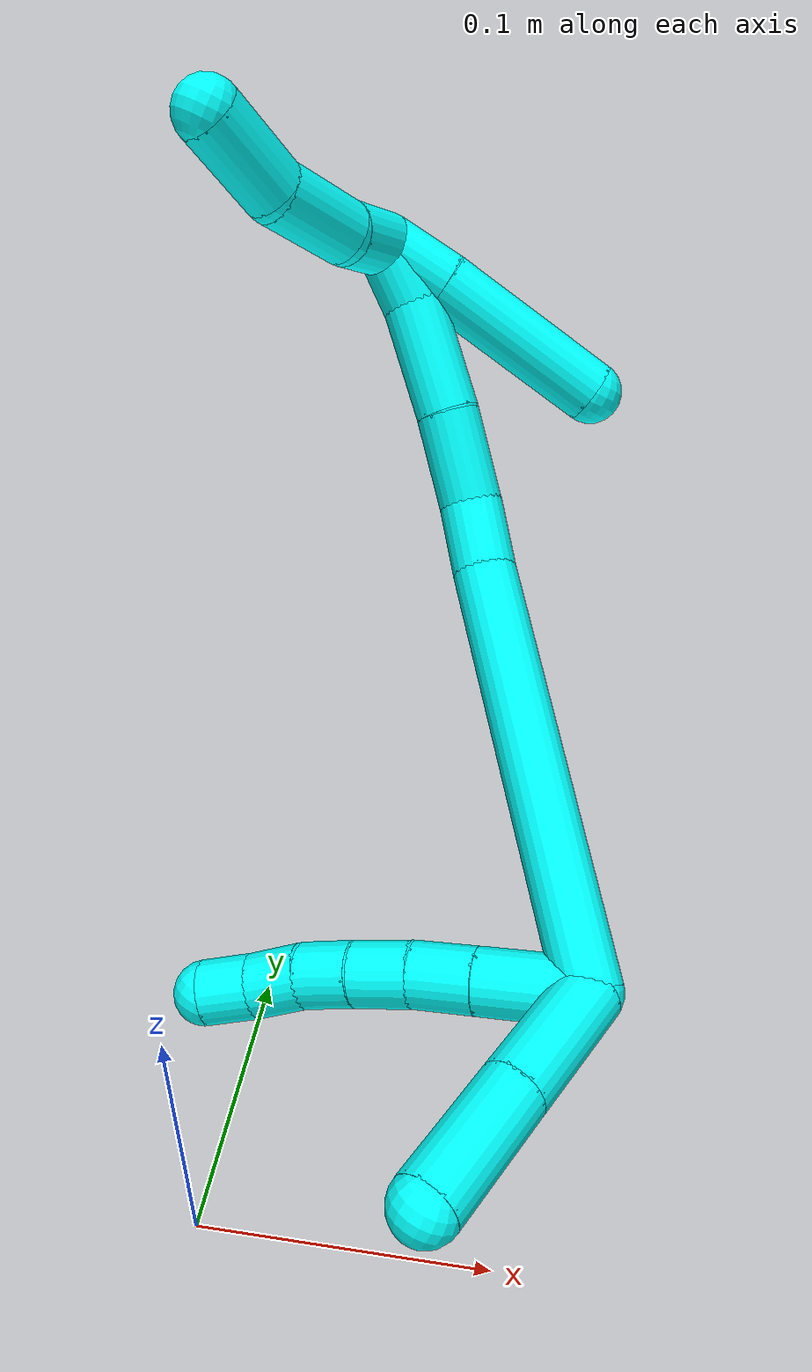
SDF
<sdf version="1.7">
 <world name="default">
  <model name="3">
   <static>0</static>
   <link name="3">
    <collision name="collision-cylinder-e_1_2_8">
     <pose>-0.01819 -0.002739 -0.008666 2.83542 -1.10743 -2.65244</pose>
     <geometry><cylinder><radius>0.0125</radius><length>0.040668</length></cylinder></geometry>
     <surface>
      <friction><ode><mu>1.16</mu><mu2>1.16</mu2><slip1>0</slip1><slip2>0</slip2></ode></friction>
      <contact><ode><kp>1e+06</kp><kd>1</kd><max_vel>0</max_vel><min_depth>0.001</min_depth></ode></contact>
     </surface>
    </collision>
    <visual name="visual-cylinder-e_1_2_8">
     <pose>-0.01819 -0.002739 -0.008666 2.83542 -1.10743 -2.65244</pose>
     <geometry><cylinder><radius>0.0125</radius><length>0.040668</length></cylinder></geometry>
     <material><ambient>0.003922 1 0.996078 1</ambient></material>
    </visual>
    <collision name="collision-cylinder-e_2_8_9">
     <pose>-0.047251 -0.006898 -0.022592 2.87809 -1.10621 -2.71872</pose>
     <geometry><cylinder><radius>0.0125</radius><length>0.024321</length></cylinder></geometry>
     <surface>
      <friction><ode><mu>1.16</mu><mu2>1.16</mu2><slip1>0</slip1><slip2>0</slip2></ode></friction>
      <contact><ode><kp>1e+06</kp><kd>1</kd><max_vel>0</max_vel><min_depth>0.001</min_depth></ode></contact>
     </surface>
    </collision>
    <visual name="visual-cylinder-e_2_8_9">
     <pose>-0.047251 -0.006898 -0.022592 2.87809 -1.10621 -2.71872</pose>
     <geometry><cylinder><radius>0.0125</radius><length>0.024321</length></cylinder></geometry>
     <material><ambient>0.003922 1 0.996078 1</ambient></material>
    </visual>
    <collision name="collision-cylinder-e_3_9_10">
     <pose>-0.067783 -0.009893 -0.033666 2.87693 -1.01324 -2.67076</pose>
     <geometry><cylinder><radius>0.0125</radius><length>0.022767</length></cylinder></geometry>
     <surface>
      <friction><ode><mu>1.16</mu><mu2>1.16</mu2><slip1>0</slip1><slip2>0</slip2></ode></friction>
      <contact><ode><kp>1e+06</kp><kd>1</kd><max_vel>0</max_vel><min_depth>0.001</min_depth></ode></contact>
     </surface>
    </collision>
    <visual name="visual-cylinder-e_3_9_10">
     <pose>-0.067783 -0.009893 -0.033666 2.87693 -1.01324 -2.67076</pose>
     <geometry><cylinder><radius>0.0125</radius><length>0.022767</length></cylinder></geometry>
     <material><ambient>0.003922 1 0.996078 1</ambient></material>
    </visual>
    <collision name="collision-cylinder-e_4_10_11">
     <pose>-0.08621 -0.012279 -0.045248 3.00192 -0.984404 -2.88215</pose>
     <geometry><cylinder><radius>0.0125</radius><length>0.021052</length></cylinder></geometry>
     <surface>
      <friction><ode><mu>1.16</mu><mu2>1.16</mu2><slip1>0</slip1><slip2>0</slip2></ode></friction>
      <contact><ode><kp>1e+06</kp><kd>1</kd><max_vel>0</max_vel><min_depth>0.001</min_depth></ode></contact>
     </surface>
    </collision>
    <visual name="visual-cylinder-e_4_10_11">
     <pose>-0.08621 -0.012279 -0.045248 3.00192 -0.984404 -2.88215</pose>
     <geometry><cylinder><radius>0.0125</radius><length>0.021052</length></cylinder></geometry>
     <material><ambient>0.003922 1 0.996078 1</ambient></material>
    </visual>
    <collision name="collision-cylinder-e_5_11_12">
     <pose>-0.102711 -0.014413 -0.058014 2.95481 -0.826557 -2.72074</pose>
     <geometry><cylinder><radius>0.0125</radius><length>0.021026</length></cylinder></geometry>
     <surface>
      <friction><ode><mu>1.16</mu><mu2>1.16</mu2><slip1>0</slip1><slip2>0</slip2></ode></friction>
      <contact><ode><kp>1e+06</kp><kd>1</kd><max_vel>0</max_vel><min_depth>0.001</min_depth></ode></contact>
     </surface>
    </collision>
    <visual name="visual-cylinder-e_5_11_12">
     <pose>-0.102711 -0.014413 -0.058014 2.95481 -0.826557 -2.72074</pose>
     <geometry><cylinder><radius>0.0125</radius><length>0.021026</length></cylinder></geometry>
     <material><ambient>0.003922 1 0.996078 1</ambient></material>
    </visual>
    <collision name="collision-cylinder-e_6_12_6">
     <pose>-0.118212 -0.018256 -0.070925 2.73856 -0.879443 -2.32224</pose>
     <geometry><cylinder><radius>0.0125</radius><length>0.020165</length></cylinder></geometry>
     <surface>
      <friction><ode><mu>1.16</mu><mu2>1.16</mu2><slip1>0</slip1><slip2>0</slip2></ode></friction>
      <contact><ode><kp>1e+06</kp><kd>1</kd><max_vel>0</max_vel><min_depth>0.001</min_depth></ode></contact>
     </surface>
    </collision>
    <visual name="visual-cylinder-e_6_12_6">
     <pose>-0.118212 -0.018256 -0.070925 2.73856 -0.879443 -2.32224</pose>
     <geometry><cylinder><radius>0.0125</radius><length>0.020165</length></cylinder></geometry>
     <material><ambient>0.003922 1 0.996078 1</ambient></material>
    </visual>
    <collision name="collision-cylinder-e_1_2_13">
     <pose>-0.000202 -0.021138 -0.013501 2.13918 -0.008073 -0.014734</pose>
     <geometry><cylinder><radius>0.0125</radius><length>0.050165</length></cylinder></geometry>
     <surface>
      <friction><ode><mu>1.16</mu><mu2>1.16</mu2><slip1>0</slip1><slip2>0</slip2></ode></friction>
      <contact><ode><kp>1e+06</kp><kd>1</kd><max_vel>0</max_vel><min_depth>0.001</min_depth></ode></contact>
     </surface>
    </collision>
    <visual name="visual-cylinder-e_1_2_13">
     <pose>-0.000202 -0.021138 -0.013501 2.13918 -0.008073 -0.014734</pose>
     <geometry><cylinder><radius>0.0125</radius><length>0.050165</length></cylinder></geometry>
     <material><ambient>0.003922 1 0.996078 1</ambient></material>
    </visual>
    <collision name="collision-cylinder-e_2_13_5">
     <pose>-0.000479 -0.063266 -0.040429 2.13992 -0.002988 -0.005459</pose>
     <geometry><cylinder><radius>0.0125</radius><length>0.049835</length></cylinder></geometry>
     <surface>
      <friction><ode><mu>1.16</mu><mu2>1.16</mu2><slip1>0</slip1><slip2>0</slip2></ode></friction>
      <contact><ode><kp>1e+06</kp><kd>1</kd><max_vel>0</max_vel><min_depth>0.001</min_depth></ode></contact>
     </surface>
    </collision>
    <visual name="visual-cylinder-e_2_13_5">
     <pose>-0.000479 -0.063266 -0.040429 2.13992 -0.002988 -0.005459</pose>
     <geometry><cylinder><radius>0.0125</radius><length>0.049835</length></cylinder></geometry>
     <material><ambient>0.003922 1 0.996078 1</ambient></material>
    </visual>
    <collision name="collision-cylinder-e_1_2_14">
     <pose>-0.058241 0.016036 0.055887 -0.279423 -0.78625 0.116508</pose>
     <geometry><cylinder><radius>0.0125</radius><length>0.16459</length></cylinder></geometry>
     <surface>
      <friction><ode><mu>1.16</mu><mu2>1.16</mu2><slip1>0</slip1><slip2>0</slip2></ode></friction>
      <contact><ode><kp>1e+06</kp><kd>1</kd><max_vel>0</max_vel><min_depth>0.001</min_depth></ode></contact>
     </surface>
    </collision>
    <visual name="visual-cylinder-e_1_2_14">
     <pose>-0.058241 0.016036 0.055887 -0.279423 -0.78625 0.116508</pose>
     <geometry><cylinder><radius>0.0125</radius><length>0.16459</length></cylinder></geometry>
     <material><ambient>0.003922 1 0.996078 1</ambient></material>
    </visual>
    <collision name="collision-cylinder-e_2_14_15">
     <pose>-0.125923 0.033741 0.122221 -0.158489 -0.728602 0.060544</pose>
     <geometry><cylinder><radius>0.0125</radius><length>0.028359</length></cylinder></geometry>
     <surface>
      <friction><ode><mu>1.16</mu><mu2>1.16</mu2><slip1>0</slip1><slip2>0</slip2></ode></friction>
      <contact><ode><kp>1e+06</kp><kd>1</kd><max_vel>0</max_vel><min_depth>0.001</min_depth></ode></contact>
     </surface>
    </collision>
    <visual name="visual-cylinder-e_2_14_15">
     <pose>-0.125923 0.033741 0.122221 -0.158489 -0.728602 0.060544</pose>
     <geometry><cylinder><radius>0.0125</radius><length>0.028359</length></cylinder></geometry>
     <material><ambient>0.003922 1 0.996078 1</ambient></material>
    </visual>
    <collision name="collision-cylinder-e_3_15_16">
     <pose>-0.146608 0.03189 0.146934 0.241944 -0.653137 -0.082301</pose>
     <geometry><cylinder><radius>0.0125</radius><length>0.037006</length></cylinder></geometry>
     <surface>
      <friction><ode><mu>1.16</mu><mu2>1.16</mu2><slip1>0</slip1><slip2>0</slip2></ode></friction>
      <contact><ode><kp>1e+06</kp><kd>1</kd><max_vel>0</max_vel><min_depth>0.001</min_depth></ode></contact>
     </surface>
    </collision>
    <visual name="visual-cylinder-e_3_15_16">
     <pose>-0.146608 0.03189 0.146934 0.241944 -0.653137 -0.082301</pose>
     <geometry><cylinder><radius>0.0125</radius><length>0.037006</length></cylinder></geometry>
     <material><ambient>0.003922 1 0.996078 1</ambient></material>
    </visual>
    <collision name="collision-cylinder-e_4_16_17">
     <pose>-0.172818 0.025224 0.177485 0.19079 -0.734113 -0.073545</pose>
     <geometry><cylinder><radius>0.0125</radius><length>0.044678</length></cylinder></geometry>
     <surface>
      <friction><ode><mu>1.16</mu><mu2>1.16</mu2><slip1>0</slip1><slip2>0</slip2></ode></friction>
      <contact><ode><kp>1e+06</kp><kd>1</kd><max_vel>0</max_vel><min_depth>0.001</min_depth></ode></contact>
     </surface>
    </collision>
    <visual name="visual-cylinder-e_4_16_17">
     <pose>-0.172818 0.025224 0.177485 0.19079 -0.734113 -0.073545</pose>
     <geometry><cylinder><radius>0.0125</radius><length>0.044678</length></cylinder></geometry>
     <material><ambient>0.003922 1 0.996078 1</ambient></material>
    </visual>
    <collision name="collision-cylinder-e_5_17_1">
     <pose>-0.196454 0.017794 0.201974 0.481281 -0.752775 -0.193371</pose>
     <geometry><cylinder><radius>0.0125</radius><length>0.025366</length></cylinder></geometry>
     <surface>
      <friction><ode><mu>1.16</mu><mu2>1.16</mu2><slip1>0</slip1><slip2>0</slip2></ode></friction>
      <contact><ode><kp>1e+06</kp><kd>1</kd><max_vel>0</max_vel><min_depth>0.001</min_depth></ode></contact>
     </surface>
    </collision>
    <visual name="visual-cylinder-e_5_17_1">
     <pose>-0.196454 0.017794 0.201974 0.481281 -0.752775 -0.193371</pose>
     <geometry><cylinder><radius>0.0125</radius><length>0.025366</length></cylinder></geometry>
     <material><ambient>0.003922 1 0.996078 1</ambient></material>
    </visual>
    <collision name="collision-cylinder-e_1_1_18">
     <pose>-0.206214 -0.000238 0.207963 1.73062 -0.078044 -0.091614</pose>
     <geometry><cylinder><radius>0.0125</radius><length>0.027935</length></cylinder></geometry>
     <surface>
      <friction><ode><mu>1.16</mu><mu2>1.16</mu2><slip1>0</slip1><slip2>0</slip2></ode></friction>
      <contact><ode><kp>1e+06</kp><kd>1</kd><max_vel>0</max_vel><min_depth>0.001</min_depth></ode></contact>
     </surface>
    </collision>
    <visual name="visual-cylinder-e_1_1_18">
     <pose>-0.206214 -0.000238 0.207963 1.73062 -0.078044 -0.091614</pose>
     <geometry><cylinder><radius>0.0125</radius><length>0.027935</length></cylinder></geometry>
     <material><ambient>0.003922 1 0.996078 1</ambient></material>
    </visual>
    <collision name="collision-cylinder-e_2_18_19">
     <pose>-0.213264 -0.030797 0.206035 1.55361 -0.340666 -0.33497</pose>
     <geometry><cylinder><radius>0.0125</radius><length>0.035677</length></cylinder></geometry>
     <surface>
      <friction><ode><mu>1.16</mu><mu2>1.16</mu2><slip1>0</slip1><slip2>0</slip2></ode></friction>
      <contact><ode><kp>1e+06</kp><kd>1</kd><max_vel>0</max_vel><min_depth>0.001</min_depth></ode></contact>
     </surface>
    </collision>
    <visual name="visual-cylinder-e_2_18_19">
     <pose>-0.213264 -0.030797 0.206035 1.55361 -0.340666 -0.33497</pose>
     <geometry><cylinder><radius>0.0125</radius><length>0.035677</length></cylinder></geometry>
     <material><ambient>0.003922 1 0.996078 1</ambient></material>
    </visual>
    <collision name="collision-cylinder-e_3_19_4">
     <pose>-0.226407 -0.063209 0.212325 1.20358 -0.405892 -0.280785</pose>
     <geometry><cylinder><radius>0.0125</radius><length>0.036387</length></cylinder></geometry>
     <surface>
      <friction><ode><mu>1.16</mu><mu2>1.16</mu2><slip1>0</slip1><slip2>0</slip2></ode></friction>
      <contact><ode><kp>1e+06</kp><kd>1</kd><max_vel>0</max_vel><min_depth>0.001</min_depth></ode></contact>
     </surface>
    </collision>
    <visual name="visual-cylinder-e_3_19_4">
     <pose>-0.226407 -0.063209 0.212325 1.20358 -0.405892 -0.280785</pose>
     <geometry><cylinder><radius>0.0125</radius><length>0.036387</length></cylinder></geometry>
     <material><ambient>0.003922 1 0.996078 1</ambient></material>
    </visual>
    <collision name="collision-cylinder-e_1_1_20">
     <pose>-0.193255 0.020256 0.208303 -1.84191 1.03786 -1.28898</pose>
     <geometry><cylinder><radius>0.0125</radius><length>0.027564</length></cylinder></geometry>
     <surface>
      <friction><ode><mu>1.16</mu><mu2>1.16</mu2><slip1>0</slip1><slip2>0</slip2></ode></friction>
      <contact><ode><kp>1e+06</kp><kd>1</kd><max_vel>0</max_vel><min_depth>0.001</min_depth></ode></contact>
     </surface>
    </collision>
    <visual name="visual-cylinder-e_1_1_20">
     <pose>-0.193255 0.020256 0.208303 -1.84191 1.03786 -1.28898</pose>
     <geometry><cylinder><radius>0.0125</radius><length>0.027564</length></cylinder></geometry>
     <material><ambient>0.003922 1 0.996078 1</ambient></material>
    </visual>
    <collision name="collision-cylinder-e_2_20_3">
     <pose>-0.150687 0.044956 0.199564 -1.93598 1.01137 -1.35496</pose>
     <geometry><cylinder><radius>0.0125</radius><length>0.072436</length></cylinder></geometry>
     <surface>
      <friction><ode><mu>1.16</mu><mu2>1.16</mu2><slip1>0</slip1><slip2>0</slip2></ode></friction>
      <contact><ode><kp>1e+06</kp><kd>1</kd><max_vel>0</max_vel><min_depth>0.001</min_depth></ode></contact>
     </surface>
    </collision>
    <visual name="visual-cylinder-e_2_20_3">
     <pose>-0.150687 0.044956 0.199564 -1.93598 1.01137 -1.35496</pose>
     <geometry><cylinder><radius>0.0125</radius><length>0.072436</length></cylinder></geometry>
     <material><ambient>0.003922 1 0.996078 1</ambient></material>
    </visual>
    <collision name="collision-sphere-3">
     <pose>-0.11999 0.062909 0.1927 0 -0 0</pose>
     <geometry><sphere><radius>0.0125</radius></sphere></geometry>
     <surface>
      <friction><ode><mu>1.16</mu><mu2>1.16</mu2><slip1>0</slip1><slip2>0</slip2></ode></friction>
      <contact><ode><kp>1e+06</kp><kd>1</kd><max_vel>0</max_vel><min_depth>0.001</min_depth></ode></contact>
     </surface>
    </collision>
    <visual name="visual-sphere-3">
     <pose>-0.11999 0.062909 0.1927 0 -0 0</pose>
     <geometry><sphere><radius>0.0125</radius></sphere></geometry>
     <material><ambient>0.003922 1 0.996078 1</ambient></material>
    </visual>
    <collision name="collision-sphere-20">
     <pose>-0.181384 0.027002 0.206428 0 -0 0</pose>
     <geometry><sphere><radius>0.0125</radius></sphere></geometry>
     <surface>
      <friction><ode><mu>1.16</mu><mu2>1.16</mu2><slip1>0</slip1><slip2>0</slip2></ode></friction>
      <contact><ode><kp>1e+06</kp><kd>1</kd><max_vel>0</max_vel><min_depth>0.001</min_depth></ode></contact>
     </surface>
    </collision>
    <visual name="visual-sphere-20">
     <pose>-0.181384 0.027002 0.206428 0 -0 0</pose>
     <geometry><sphere><radius>0.0125</radius></sphere></geometry>
     <material><ambient>0.003922 1 0.996078 1</ambient></material>
    </visual>
    <collision name="collision-sphere-4">
     <pose>-0.233591 -0.07881 0.218327 0 -0 0</pose>
     <geometry><sphere><radius>0.0125</radius></sphere></geometry>
     <surface>
      <friction><ode><mu>1.16</mu><mu2>1.16</mu2><slip1>0</slip1><slip2>0</slip2></ode></friction>
      <contact><ode><kp>1e+06</kp><kd>1</kd><max_vel>0</max_vel><min_depth>0.001</min_depth></ode></contact>
     </surface>
    </collision>
    <visual name="visual-sphere-4">
     <pose>-0.233591 -0.07881 0.218327 0 -0 0</pose>
     <geometry><sphere><radius>0.0125</radius></sphere></geometry>
     <material><ambient>0.003922 1 0.996078 1</ambient></material>
    </visual>
    <collision name="collision-sphere-12">
     <pose>-0.110445 -0.015735 -0.065011 0 -0 0</pose>
     <geometry><sphere><radius>0.0125</radius></sphere></geometry>
     <surface>
      <friction><ode><mu>1.16</mu><mu2>1.16</mu2><slip1>0</slip1><slip2>0</slip2></ode></friction>
      <contact><ode><kp>1e+06</kp><kd>1</kd><max_vel>0</max_vel><min_depth>0.001</min_depth></ode></contact>
     </surface>
    </collision>
    <visual name="visual-sphere-12">
     <pose>-0.110445 -0.015735 -0.065011 0 -0 0</pose>
     <geometry><sphere><radius>0.0125</radius></sphere></geometry>
     <material><ambient>0.003922 1 0.996078 1</ambient></material>
    </visual>
    <collision name="collision-sphere-11">
     <pose>-0.094978 -0.01309 -0.051016 0 -0 0</pose>
     <geometry><sphere><radius>0.0125</radius></sphere></geometry>
     <surface>
      <friction><ode><mu>1.16</mu><mu2>1.16</mu2><slip1>0</slip1><slip2>0</slip2></ode></friction>
      <contact><ode><kp>1e+06</kp><kd>1</kd><max_vel>0</max_vel><min_depth>0.001</min_depth></ode></contact>
     </surface>
    </collision>
    <visual name="visual-sphere-11">
     <pose>-0.094978 -0.01309 -0.051016 0 -0 0</pose>
     <geometry><sphere><radius>0.0125</radius></sphere></geometry>
     <material><ambient>0.003922 1 0.996078 1</ambient></material>
    </visual>
    <collision name="collision-sphere-10">
     <pose>-0.077442 -0.011468 -0.03948 0 -0 0</pose>
     <geometry><sphere><radius>0.0125</radius></sphere></geometry>
     <surface>
      <friction><ode><mu>1.16</mu><mu2>1.16</mu2><slip1>0</slip1><slip2>0</slip2></ode></friction>
      <contact><ode><kp>1e+06</kp><kd>1</kd><max_vel>0</max_vel><min_depth>0.001</min_depth></ode></contact>
     </surface>
    </collision>
    <visual name="visual-sphere-10">
     <pose>-0.077442 -0.011468 -0.03948 0 -0 0</pose>
     <geometry><sphere><radius>0.0125</radius></sphere></geometry>
     <material><ambient>0.003922 1 0.996078 1</ambient></material>
    </visual>
    <collision name="collision-sphere-9">
     <pose>-0.058123 -0.008317 -0.027853 0 -0 0</pose>
     <geometry><sphere><radius>0.0125</radius></sphere></geometry>
     <surface>
      <friction><ode><mu>1.16</mu><mu2>1.16</mu2><slip1>0</slip1><slip2>0</slip2></ode></friction>
      <contact><ode><kp>1e+06</kp><kd>1</kd><max_vel>0</max_vel><min_depth>0.001</min_depth></ode></contact>
     </surface>
    </collision>
    <visual name="visual-sphere-9">
     <pose>-0.058123 -0.008317 -0.027853 0 -0 0</pose>
     <geometry><sphere><radius>0.0125</radius></sphere></geometry>
     <material><ambient>0.003922 1 0.996078 1</ambient></material>
    </visual>
    <collision name="collision-sphere-2">
     <geometry><sphere><radius>0.0125</radius></sphere></geometry>
     <surface>
      <friction><ode><mu>1.16</mu><mu2>1.16</mu2><slip1>0</slip1><slip2>0</slip2></ode></friction>
      <contact><ode><kp>1e+06</kp><kd>1</kd><max_vel>0</max_vel><min_depth>0.001</min_depth></ode></contact>
     </surface>
    </collision>
    <visual name="visual-sphere-2">
     <geometry><sphere><radius>0.0125</radius></sphere></geometry>
     <material><ambient>0.003922 1 0.996078 1</ambient></material>
    </visual>
    <collision name="collision-sphere-19">
     <pose>-0.219224 -0.047608 0.206324 0 -0 0</pose>
     <geometry><sphere><radius>0.0125</radius></sphere></geometry>
     <surface>
      <friction><ode><mu>1.16</mu><mu2>1.16</mu2><slip1>0</slip1><slip2>0</slip2></ode></friction>
      <contact><ode><kp>1e+06</kp><kd>1</kd><max_vel>0</max_vel><min_depth>0.001</min_depth></ode></contact>
     </surface>
    </collision>
    <visual name="visual-sphere-19">
     <pose>-0.219224 -0.047608 0.206324 0 -0 0</pose>
     <geometry><sphere><radius>0.0125</radius></sphere></geometry>
     <material><ambient>0.003922 1 0.996078 1</ambient></material>
    </visual>
    <collision name="collision-sphere-8">
     <pose>-0.03638 -0.005479 -0.017332 0 -0 0</pose>
     <geometry><sphere><radius>0.0125</radius></sphere></geometry>
     <surface>
      <friction><ode><mu>1.16</mu><mu2>1.16</mu2><slip1>0</slip1><slip2>0</slip2></ode></friction>
      <contact><ode><kp>1e+06</kp><kd>1</kd><max_vel>0</max_vel><min_depth>0.001</min_depth></ode></contact>
     </surface>
    </collision>
    <visual name="visual-sphere-8">
     <pose>-0.03638 -0.005479 -0.017332 0 -0 0</pose>
     <geometry><sphere><radius>0.0125</radius></sphere></geometry>
     <material><ambient>0.003922 1 0.996078 1</ambient></material>
    </visual>
    <collision name="collision-sphere-6">
     <pose>-0.125979 -0.020777 -0.076838 0 -0 0</pose>
     <geometry><sphere><radius>0.0125</radius></sphere></geometry>
     <surface>
      <friction><ode><mu>1.16</mu><mu2>1.16</mu2><slip1>0</slip1><slip2>0</slip2></ode></friction>
      <contact><ode><kp>1e+06</kp><kd>1</kd><max_vel>0</max_vel><min_depth>0.001</min_depth></ode></contact>
     </surface>
    </collision>
    <visual name="visual-sphere-6">
     <pose>-0.125979 -0.020777 -0.076838 0 -0 0</pose>
     <geometry><sphere><radius>0.0125</radius></sphere></geometry>
     <material><ambient>0.003922 1 0.996078 1</ambient></material>
    </visual>
    <collision name="collision-sphere-13">
     <pose>-0.000405 -0.042276 -0.027001 0 -0 0</pose>
     <geometry><sphere><radius>0.0125</radius></sphere></geometry>
     <surface>
      <friction><ode><mu>1.16</mu><mu2>1.16</mu2><slip1>0</slip1><slip2>0</slip2></ode></friction>
      <contact><ode><kp>1e+06</kp><kd>1</kd><max_vel>0</max_vel><min_depth>0.001</min_depth></ode></contact>
     </surface>
    </collision>
    <visual name="visual-sphere-13">
     <pose>-0.000405 -0.042276 -0.027001 0 -0 0</pose>
     <geometry><sphere><radius>0.0125</radius></sphere></geometry>
     <material><ambient>0.003922 1 0.996078 1</ambient></material>
    </visual>
    <collision name="collision-sphere-5">
     <pose>-0.000554 -0.084256 -0.053857 0 -0 0</pose>
     <geometry><sphere><radius>0.0125</radius></sphere></geometry>
     <surface>
      <friction><ode><mu>1.16</mu><mu2>1.16</mu2><slip1>0</slip1><slip2>0</slip2></ode></friction>
      <contact><ode><kp>1e+06</kp><kd>1</kd><max_vel>0</max_vel><min_depth>0.001</min_depth></ode></contact>
     </surface>
    </collision>
    <visual name="visual-sphere-5">
     <pose>-0.000554 -0.084256 -0.053857 0 -0 0</pose>
     <geometry><sphere><radius>0.0125</radius></sphere></geometry>
     <material><ambient>0.003922 1 0.996078 1</ambient></material>
    </visual>
    <collision name="collision-sphere-14">
     <pose>-0.116482 0.032071 0.111774 0 -0 0</pose>
     <geometry><sphere><radius>0.0125</radius></sphere></geometry>
     <surface>
      <friction><ode><mu>1.16</mu><mu2>1.16</mu2><slip1>0</slip1><slip2>0</slip2></ode></friction>
      <contact><ode><kp>1e+06</kp><kd>1</kd><max_vel>0</max_vel><min_depth>0.001</min_depth></ode></contact>
     </surface>
    </collision>
    <visual name="visual-sphere-14">
     <pose>-0.116482 0.032071 0.111774 0 -0 0</pose>
     <geometry><sphere><radius>0.0125</radius></sphere></geometry>
     <material><ambient>0.003922 1 0.996078 1</ambient></material>
    </visual>
    <collision name="collision-sphere-15">
     <pose>-0.135364 0.035411 0.132668 0 -0 0</pose>
     <geometry><sphere><radius>0.0125</radius></sphere></geometry>
     <surface>
      <friction><ode><mu>1.16</mu><mu2>1.16</mu2><slip1>0</slip1><slip2>0</slip2></ode></friction>
      <contact><ode><kp>1e+06</kp><kd>1</kd><max_vel>0</max_vel><min_depth>0.001</min_depth></ode></contact>
     </surface>
    </collision>
    <visual name="visual-sphere-15">
     <pose>-0.135364 0.035411 0.132668 0 -0 0</pose>
     <geometry><sphere><radius>0.0125</radius></sphere></geometry>
     <material><ambient>0.003922 1 0.996078 1</ambient></material>
    </visual>
    <collision name="collision-sphere-16">
     <pose>-0.157852 0.028369 0.161201 0 -0 0</pose>
     <geometry><sphere><radius>0.0125</radius></sphere></geometry>
     <surface>
      <friction><ode><mu>1.16</mu><mu2>1.16</mu2><slip1>0</slip1><slip2>0</slip2></ode></friction>
      <contact><ode><kp>1e+06</kp><kd>1</kd><max_vel>0</max_vel><min_depth>0.001</min_depth></ode></contact>
     </surface>
    </collision>
    <visual name="visual-sphere-16">
     <pose>-0.157852 0.028369 0.161201 0 -0 0</pose>
     <geometry><sphere><radius>0.0125</radius></sphere></geometry>
     <material><ambient>0.003922 1 0.996078 1</ambient></material>
    </visual>
    <collision name="collision-sphere-17">
     <pose>-0.187783 0.022079 0.193769 0 -0 0</pose>
     <geometry><sphere><radius>0.0125</radius></sphere></geometry>
     <surface>
      <friction><ode><mu>1.16</mu><mu2>1.16</mu2><slip1>0</slip1><slip2>0</slip2></ode></friction>
      <contact><ode><kp>1e+06</kp><kd>1</kd><max_vel>0</max_vel><min_depth>0.001</min_depth></ode></contact>
     </surface>
    </collision>
    <visual name="visual-sphere-17">
     <pose>-0.187783 0.022079 0.193769 0 -0 0</pose>
     <geometry><sphere><radius>0.0125</radius></sphere></geometry>
     <material><ambient>0.003922 1 0.996078 1</ambient></material>
    </visual>
    <collision name="collision-sphere-1">
     <pose>-0.205125 0.013509 0.210179 0 -0 0</pose>
     <geometry><sphere><radius>0.0125</radius></sphere></geometry>
     <surface>
      <friction><ode><mu>1.16</mu><mu2>1.16</mu2><slip1>0</slip1><slip2>0</slip2></ode></friction>
      <contact><ode><kp>1e+06</kp><kd>1</kd><max_vel>0</max_vel><min_depth>0.001</min_depth></ode></contact>
     </surface>
    </collision>
    <visual name="visual-sphere-1">
     <pose>-0.205125 0.013509 0.210179 0 -0 0</pose>
     <geometry><sphere><radius>0.0125</radius></sphere></geometry>
     <material><ambient>0.003922 1 0.996078 1</ambient></material>
    </visual>
    <collision name="collision-sphere-18">
     <pose>-0.207303 -0.013986 0.205746 0 -0 0</pose>
     <geometry><sphere><radius>0.0125</radius></sphere></geometry>
     <surface>
      <friction><ode><mu>1.16</mu><mu2>1.16</mu2><slip1>0</slip1><slip2>0</slip2></ode></friction>
      <contact><ode><kp>1e+06</kp><kd>1</kd><max_vel>0</max_vel><min_depth>0.001</min_depth></ode></contact>
     </surface>
    </collision>
    <visual name="visual-sphere-18">
     <pose>-0.207303 -0.013986 0.205746 0 -0 0</pose>
     <geometry><sphere><radius>0.0125</radius></sphere></geometry>
     <material><ambient>0.003922 1 0.996078 1</ambient></material>
    </visual>
    <inertial>
     <pose>-0.105282 0.001489 0.085701 0 -0 0</pose>
     <mass>0.75</mass>
     <inertia>
      <ixx>0.000297</ixx>
      <ixy>0</ixy>
      <ixz>0</ixz>
      <iyy>0.000413</iyy>
      <iyz>0</iyz>
      <izz>0.000218</izz>
     </inertia>
    </inertial>
   </link>
   <pose>0.124259 0.080134 0.04736 -0.601489 0.126328 -0.465171</pose>
  </model>
 </world>
</sdf>
